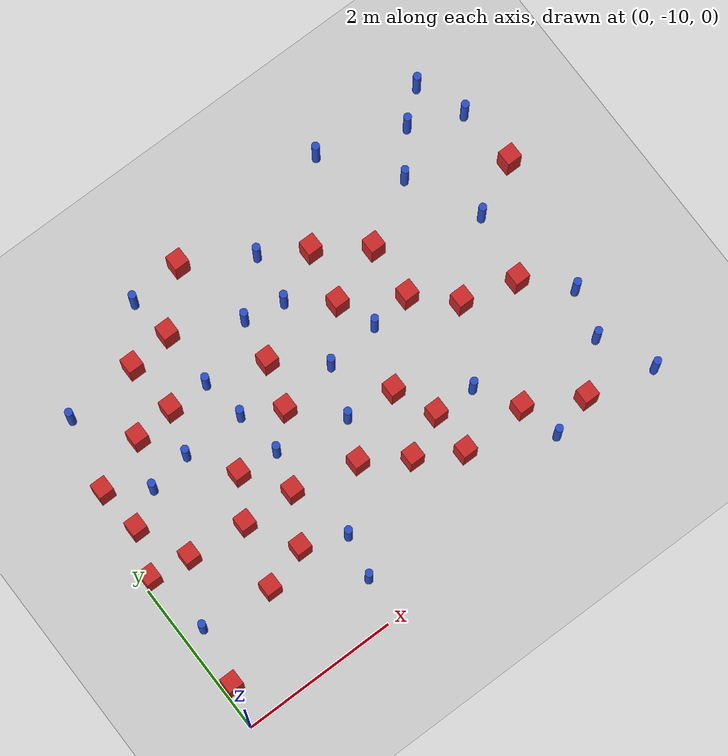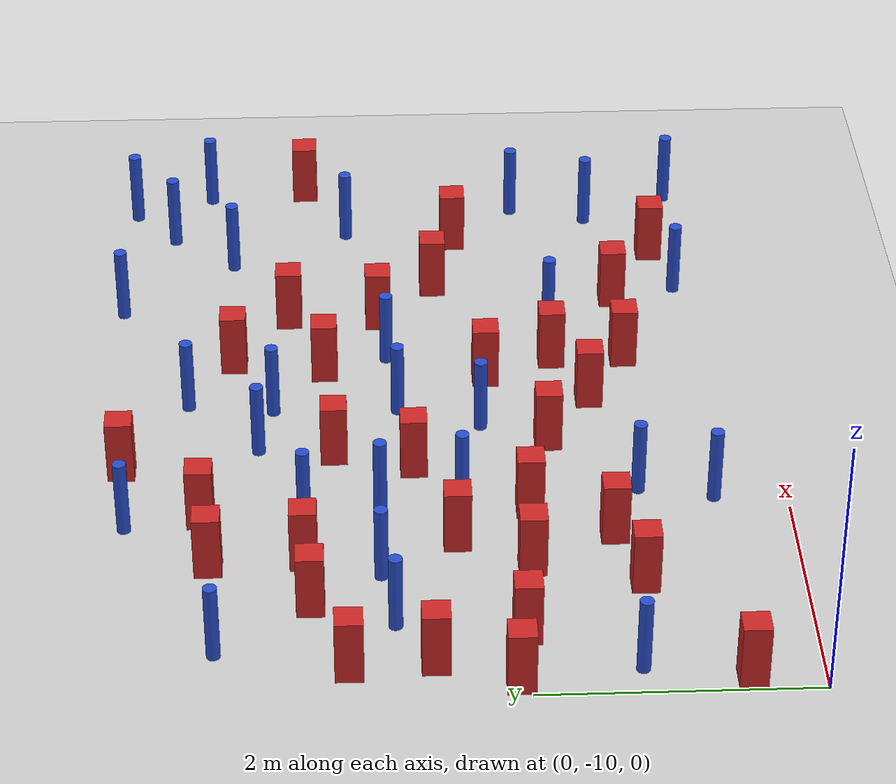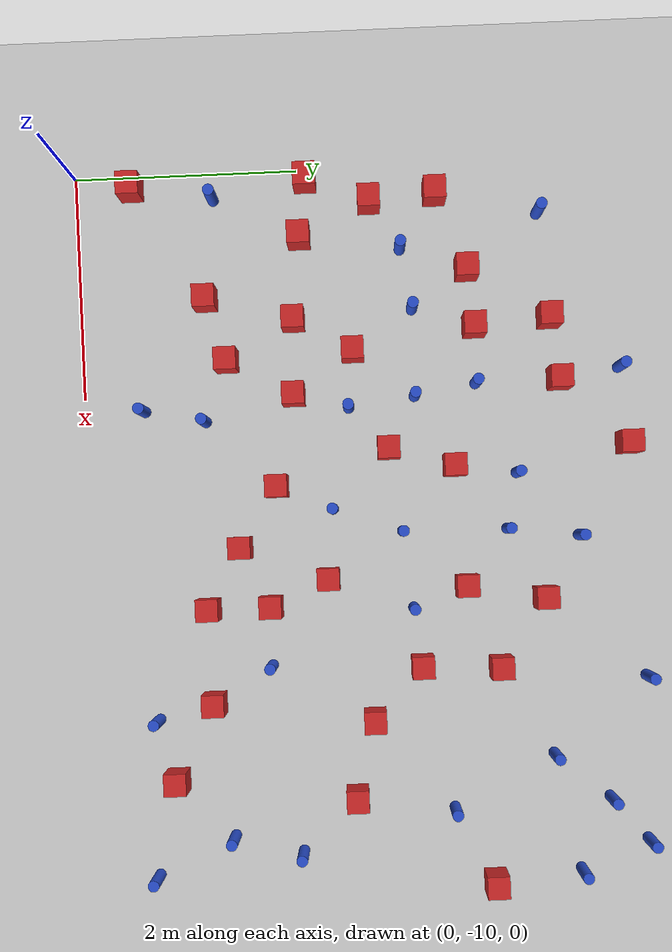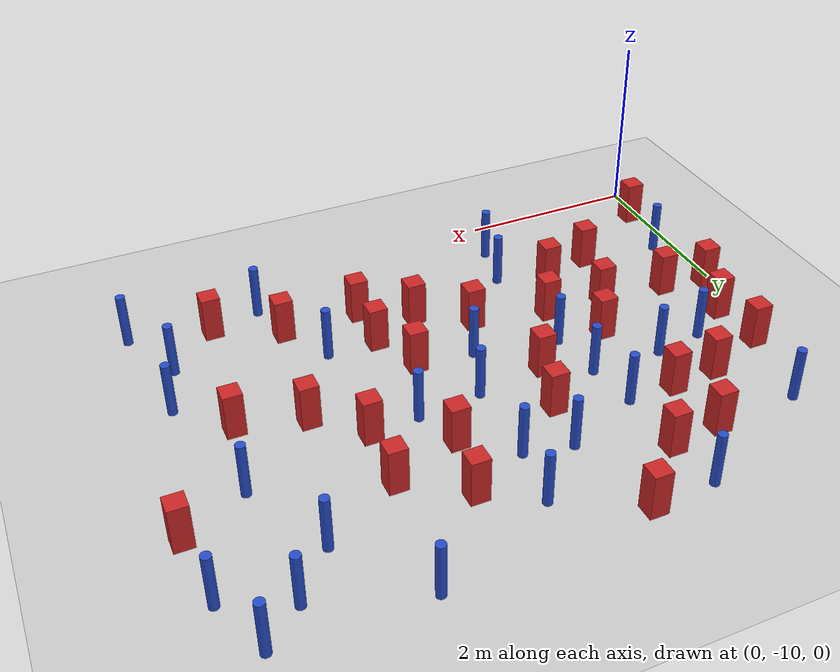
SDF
<sdf version="1.6">
 <world name="default">
  <model name="ground_plane">
   <static>1</static>
   <link name="link">
    <collision name="collision">
     <geometry><plane><normal>0 0 1</normal><size>100 100</size></plane></geometry>
     <surface><friction><ode><mu>100</mu><mu2>50</mu2></ode></friction></surface>
    </collision>
    <visual name="visual">
     <cast_shadows>0</cast_shadows>
     <geometry><plane><normal>0 0 1</normal><size>100 100</size></plane></geometry>
     <material>
      <ambient>1.0 1.0 1.0 1.0</ambient>
      <diffuse>0.8 0.8 0.8 1.0</diffuse>
      <specular>0.01 0.01 0.01 1.000000</specular>
     </material>
    </visual>
   </link>
  </model>
  <model name="square_post_obstacle5">
   <static>true</static>
   <pose>5.47020168853 -9.28129456537 1.91545236811e-07 -7.35059704564e-06 1.12565212e-07 2.39332434364e-05</pose>
   <link name="link">
    <pose>0 0 0.25 0 -0 0</pose>
    <inertial>
     <mass>100</mass>
     <inertia>
      <ixx>0.166667</ixx>
      <ixy>0</ixy>
      <ixz>0</ixz>
      <iyy>0.166667</iyy>
      <iyz>0</iyz>
      <izz>0.166667</izz>
     </inertia>
    </inertial>
    <collision name="collision"><geometry><box><size>.2 .2 .5</size></box></geometry></collision>
    <visual name="visual">
     <geometry><box><size>.2 .2 .5</size></box></geometry>
     <material>
      <script><name>Gazebo/Red</name><uri>file://media/materials/scripts/gazebo.material</uri></script>
     </material>
    </visual>
   </link>
  </model>
  <model name="square_post_obstacle7">
   <static>true</static>
   <pose>0.969384213969 -6.50192660426 1.91545236811e-07 -7.35059704564e-06 1.12565212e-07 2.39332434364e-05</pose>
   <link name="link">
    <pose>0 0 0.25 0 -0 0</pose>
    <inertial>
     <mass>100</mass>
     <inertia>
      <ixx>0.166667</ixx>
      <ixy>0</ixy>
      <ixz>0</ixz>
      <iyy>0.166667</iyy>
      <iyz>0</iyz>
      <izz>0.166667</izz>
     </inertia>
    </inertial>
    <collision name="collision"><geometry><box><size>.2 .2 .5</size></box></geometry></collision>
    <visual name="visual">
     <geometry><box><size>.2 .2 .5</size></box></geometry>
     <material>
      <script><name>Gazebo/Red</name><uri>file://media/materials/scripts/gazebo.material</uri></script>
     </material>
    </visual>
   </link>
  </model>
  <model name="pole_obstacle10">
   <static>true</static>
   <pose>2.1343631112 -9.45369826107 7.38925637345e-09 -8.47170692793e-08 1.24976764408e-08 -1.74513093041e-07</pose>
   <link name="link">
    <pose>0 0 0.3 0 -0 0</pose>
    <inertial>
     <mass>1</mass>
     <inertia><ixx>0.145833</ixx><ixy>0</ixy><ixz>0</ixz><iyy>0.145833</iyy><iyz>0</iyz><izz>0.125</izz></inertia>
    </inertial>
    <collision name="collision">
     <geometry><cylinder><radius>0.05</radius><length>.6</length></cylinder></geometry>
    </collision>
    <visual name="visual">
     <geometry><cylinder><radius>0.05</radius><length>.6</length></cylinder></geometry>
     <material>
      <script><name>Gazebo/Blue</name><uri>file://media/materials/scripts/gazebo.material</uri></script>
     </material>
    </visual>
   </link>
  </model>
  <model name="pole_obstacle28">
   <static>true</static>
   <pose>1.99844123974 -6.45437804778 7.38925637345e-09 -8.471706928e-08 1.24976765202e-08 -1.7451309301e-07</pose>
   <link name="link">
    <pose>0 0 0.3 0 -0 0</pose>
    <inertial>
     <mass>1</mass>
     <inertia><ixx>0.145833</ixx><ixy>0</ixy><ixz>0</ixz><iyy>0.145833</iyy><iyz>0</iyz><izz>0.125</izz></inertia>
    </inertial>
    <collision name="collision">
     <geometry><cylinder><radius>0.05</radius><length>.6</length></cylinder></geometry>
    </collision>
    <visual name="visual">
     <geometry><cylinder><radius>0.05</radius><length>.6</length></cylinder></geometry>
     <material>
      <script><name>Gazebo/Blue</name><uri>file://media/materials/scripts/gazebo.material</uri></script>
     </material>
    </visual>
   </link>
  </model>
  <model name="square_post_obstacle22">
   <static>true</static>
   <pose>1.42940118034 -5.77586297094 1.91545236811e-07 -7.35059704564e-06 1.12565212e-07 2.39332434364e-05</pose>
   <link name="link">
    <pose>0 0 0.25 0 -0 0</pose>
    <inertial>
     <mass>100</mass>
     <inertia>
      <ixx>0.166667</ixx>
      <ixy>0</ixy>
      <ixz>0</ixz>
      <iyy>0.166667</iyy>
      <iyz>0</iyz>
      <izz>0.166667</izz>
     </inertia>
    </inertial>
    <collision name="collision"><geometry><box><size>.2 .2 .5</size></box></geometry></collision>
    <visual name="visual">
     <geometry><box><size>.2 .2 .5</size></box></geometry>
     <material>
      <script><name>Gazebo/Red</name><uri>file://media/materials/scripts/gazebo.material</uri></script>
     </material>
    </visual>
   </link>
  </model>
  <model name="pole_obstacle39">
   <static>true</static>
   <pose>4.00359244685 -7.09326126944 7.38925637345e-09 -8.47170692796e-08 1.24976764793e-08 -1.74513093032e-07</pose>
   <link name="link">
    <pose>0 0 0.3 0 -0 0</pose>
    <inertial>
     <mass>1</mass>
     <inertia><ixx>0.145833</ixx><ixy>0</ixy><ixz>0</ixz><iyy>0.145833</iyy><iyz>0</iyz><izz>0.125</izz></inertia>
    </inertial>
    <collision name="collision">
     <geometry><cylinder><radius>0.05</radius><length>.6</length></cylinder></geometry>
    </collision>
    <visual name="visual">
     <geometry><cylinder><radius>0.05</radius><length>.6</length></cylinder></geometry>
     <material>
      <script><name>Gazebo/Blue</name><uri>file://media/materials/scripts/gazebo.material</uri></script>
     </material>
    </visual>
   </link>
  </model>
  <model name="square_post_obstacle31">
   <static>true</static>
   <pose>2.85902986433 -8.28191390681 1.91545236811e-07 -7.35059704564e-06 1.12565212e-07 2.39332434364e-05</pose>
   <link name="link">
    <pose>0 0 0.25 0 -0 0</pose>
    <inertial>
     <mass>100</mass>
     <inertia>
      <ixx>0.166667</ixx>
      <ixy>0</ixy>
      <ixz>0</ixz>
      <iyy>0.166667</iyy>
      <iyz>0</iyz>
      <izz>0.166667</izz>
     </inertia>
    </inertial>
    <collision name="collision"><geometry><box><size>.2 .2 .5</size></box></geometry></collision>
    <visual name="visual">
     <geometry><box><size>.2 .2 .5</size></box></geometry>
     <material>
      <script><name>Gazebo/Red</name><uri>file://media/materials/scripts/gazebo.material</uri></script>
     </material>
    </visual>
   </link>
  </model>
  <model name="square_post_obstacle33">
   <static>true</static>
   <pose>4.56268803029 -6.33361589708 1.91545236811e-07 -7.35059704564e-06 1.12565212e-07 2.39332434364e-05</pose>
   <link name="link">
    <pose>0 0 0.25 0 -0 0</pose>
    <inertial>
     <mass>100</mass>
     <inertia>
      <ixx>0.166667</ixx>
      <ixy>0</ixy>
      <ixz>0</ixz>
      <iyy>0.166667</iyy>
      <iyz>0</iyz>
      <izz>0.166667</izz>
     </inertia>
    </inertial>
    <collision name="collision"><geometry><box><size>.2 .2 .5</size></box></geometry></collision>
    <visual name="visual">
     <geometry><box><size>.2 .2 .5</size></box></geometry>
     <material>
      <script><name>Gazebo/Red</name><uri>file://media/materials/scripts/gazebo.material</uri></script>
     </material>
    </visual>
   </link>
  </model>
  <model name="pole_obstacle45">
   <static>true</static>
   <pose>6.42730115407 -5.67031655102 7.38925637345e-09 -8.47170692796e-08 1.24976764786e-08 -1.74513093032e-07</pose>
   <link name="link">
    <pose>0 0 0.3 0 -0 0</pose>
    <inertial>
     <mass>1</mass>
     <inertia><ixx>0.145833</ixx><ixy>0</ixy><ixz>0</ixz><iyy>0.145833</iyy><iyz>0</iyz><izz>0.125</izz></inertia>
    </inertial>
    <collision name="collision">
     <geometry><cylinder><radius>0.05</radius><length>.6</length></cylinder></geometry>
    </collision>
    <visual name="visual">
     <geometry><cylinder><radius>0.05</radius><length>.6</length></cylinder></geometry>
     <material>
      <script><name>Gazebo/Blue</name><uri>file://media/materials/scripts/gazebo.material</uri></script>
     </material>
    </visual>
   </link>
  </model>
  <model name="pole_obstacle52">
   <static>true</static>
   <pose>2.24843024175 -8.90656425745 7.38925637345e-09 -8.47170692793e-08 1.24976764408e-08 -1.74513093041e-07</pose>
   <link name="link">
    <pose>0 0 0.3 0 -0 0</pose>
    <inertial>
     <mass>1</mass>
     <inertia><ixx>0.145833</ixx><ixy>0</ixy><ixz>0</ixz><iyy>0.145833</iyy><iyz>0</iyz><izz>0.125</izz></inertia>
    </inertial>
    <collision name="collision">
     <geometry><cylinder><radius>0.05</radius><length>.6</length></cylinder></geometry>
    </collision>
    <visual name="visual">
     <geometry><cylinder><radius>0.05</radius><length>.6</length></cylinder></geometry>
     <material>
      <script><name>Gazebo/Blue</name><uri>file://media/materials/scripts/gazebo.material</uri></script>
     </material>
    </visual>
   </link>
  </model>
  <model name="pole_obstacle62">
   <static>true</static>
   <pose>6.00380496168 -8.79087107958 7.38925637345e-09 -8.471706928e-08 1.24976765081e-08 -1.74513093015e-07</pose>
   <link name="link">
    <pose>0 0 0.3 0 -0 0</pose>
    <inertial>
     <mass>1</mass>
     <inertia><ixx>0.145833</ixx><ixy>0</ixy><ixz>0</ixz><iyy>0.145833</iyy><iyz>0</iyz><izz>0.125</izz></inertia>
    </inertial>
    <collision name="collision">
     <geometry><cylinder><radius>0.05</radius><length>.6</length></cylinder></geometry>
    </collision>
    <visual name="visual">
     <geometry><cylinder><radius>0.05</radius><length>.6</length></cylinder></geometry>
     <material>
      <script><name>Gazebo/Blue</name><uri>file://media/materials/scripts/gazebo.material</uri></script>
     </material>
    </visual>
   </link>
  </model>
  <model name="square_post_obstacle49">
   <static>true</static>
   <pose>0.273968868932 -6.76495690813 1.91545236811e-07 -7.35059704564e-06 1.12565212e-07 2.39332434364e-05</pose>
   <link name="link">
    <pose>0 0 0.25 0 -0 0</pose>
    <inertial>
     <mass>100</mass>
     <inertia>
      <ixx>0.166667</ixx>
      <ixy>0</ixy>
      <ixz>0</ixz>
      <iyy>0.166667</iyy>
      <iyz>0</iyz>
      <izz>0.166667</izz>
     </inertia>
    </inertial>
    <collision name="collision"><geometry><box><size>.2 .2 .5</size></box></geometry></collision>
    <visual name="visual">
     <geometry><box><size>.2 .2 .5</size></box></geometry>
     <material>
      <script><name>Gazebo/Red</name><uri>file://media/materials/scripts/gazebo.material</uri></script>
     </material>
    </visual>
   </link>
  </model>
  <model name="pole_obstacle63">
   <static>true</static>
   <pose>2.09076308118 -7.01022061048 7.38925637345e-09 -8.47170692798e-08 1.24976765033e-08 -1.74513093019e-07</pose>
   <link name="link">
    <pose>0 0 0.3 0 -0 0</pose>
    <inertial>
     <mass>1</mass>
     <inertia><ixx>0.145833</ixx><ixy>0</ixy><ixz>0</ixz><iyy>0.145833</iyy><iyz>0</iyz><izz>0.125</izz></inertia>
    </inertial>
    <collision name="collision">
     <geometry><cylinder><radius>0.05</radius><length>.6</length></cylinder></geometry>
    </collision>
    <visual name="visual">
     <geometry><cylinder><radius>0.05</radius><length>.6</length></cylinder></geometry>
     <material>
      <script><name>Gazebo/Blue</name><uri>file://media/materials/scripts/gazebo.material</uri></script>
     </material>
    </visual>
   </link>
  </model>
  <model name="square_post_obstacle50">
   <static>true</static>
   <pose>0.323421957365 -7.35520028261 1.91545236811e-07 -7.35059704564e-06 1.12565212e-07 2.39332434364e-05</pose>
   <link name="link">
    <pose>0 0 0.25 0 -0 0</pose>
    <inertial>
     <mass>100</mass>
     <inertia>
      <ixx>0.166667</ixx>
      <ixy>0</ixy>
      <ixz>0</ixz>
      <iyy>0.166667</iyy>
      <iyz>0</iyz>
      <izz>0.166667</izz>
     </inertia>
    </inertial>
    <collision name="collision"><geometry><box><size>.2 .2 .5</size></box></geometry></collision>
    <visual name="visual">
     <geometry><box><size>.2 .2 .5</size></box></geometry>
     <material>
      <script><name>Gazebo/Red</name><uri>file://media/materials/scripts/gazebo.material</uri></script>
     </material>
    </visual>
   </link>
  </model>
  <model name="square_post_obstacle55">
   <static>true</static>
   <pose>3.71096104566 -7.85134940278 1.91545236811e-07 -7.35059704564e-06 1.12565212e-07 2.39332434364e-05</pose>
   <link name="link">
    <pose>0 0 0.25 0 -0 0</pose>
    <inertial>
     <mass>100</mass>
     <inertia>
      <ixx>0.166667</ixx>
      <ixy>0</ixy>
      <ixz>0</ixz>
      <iyy>0.166667</iyy>
      <iyz>0</iyz>
      <izz>0.166667</izz>
     </inertia>
    </inertial>
    <collision name="collision"><geometry><box><size>.2 .2 .5</size></box></geometry></collision>
    <visual name="visual">
     <geometry><box><size>.2 .2 .5</size></box></geometry>
     <material>
      <script><name>Gazebo/Red</name><uri>file://media/materials/scripts/gazebo.material</uri></script>
     </material>
    </visual>
   </link>
  </model>
  <model name="square_post_obstacle58">
   <static>true</static>
   <pose>0.107334259408 -7.92188177164 1.91545236811e-07 -7.35059704564e-06 1.12565212e-07 2.39332434364e-05</pose>
   <link name="link">
    <pose>0 0 0.25 0 -0 0</pose>
    <inertial>
     <mass>100</mass>
     <inertia>
      <ixx>0.166667</ixx>
      <ixy>0</ixy>
      <ixz>0</ixz>
      <iyy>0.166667</iyy>
      <iyz>0</iyz>
      <izz>0.166667</izz>
     </inertia>
    </inertial>
    <collision name="collision"><geometry><box><size>.2 .2 .5</size></box></geometry></collision>
    <visual name="visual">
     <geometry><box><size>.2 .2 .5</size></box></geometry>
     <material>
      <script><name>Gazebo/Red</name><uri>file://media/materials/scripts/gazebo.material</uri></script>
     </material>
    </visual>
   </link>
  </model>
  <model name="pole_obstacle69">
   <static>true</static>
   <pose>4.70257432908 -5.01154501933 7.38925637345e-09 -8.47170692796e-08 1.24976764786e-08 -1.74513093032e-07</pose>
   <link name="link">
    <pose>0 0 0.3 0 -0 0</pose>
    <inertial>
     <mass>1</mass>
     <inertia><ixx>0.145833</ixx><ixy>0</ixy><ixz>0</ixz><iyy>0.145833</iyy><iyz>0</iyz><izz>0.125</izz></inertia>
    </inertial>
    <collision name="collision">
     <geometry><cylinder><radius>0.05</radius><length>.6</length></cylinder></geometry>
    </collision>
    <visual name="visual">
     <geometry><cylinder><radius>0.05</radius><length>.6</length></cylinder></geometry>
     <material>
      <script><name>Gazebo/Blue</name><uri>file://media/materials/scripts/gazebo.material</uri></script>
     </material>
    </visual>
   </link>
  </model>
  <model name="square_post_obstacle71">
   <static>true</static>
   <pose>4.99521495875 -7.48334320355 1.91545236811e-07 -7.35059704564e-06 1.12565212e-07 2.39332434364e-05</pose>
   <link name="link">
    <pose>0 0 0.25 0 -0 0</pose>
    <inertial>
     <mass>100</mass>
     <inertia>
      <ixx>0.166667</ixx>
      <ixy>0</ixy>
      <ixz>0</ixz>
      <iyy>0.166667</iyy>
      <iyz>0</iyz>
      <izz>0.166667</izz>
     </inertia>
    </inertial>
    <collision name="collision"><geometry><box><size>.2 .2 .5</size></box></geometry></collision>
    <visual name="visual">
     <geometry><box><size>.2 .2 .5</size></box></geometry>
     <material>
      <script><name>Gazebo/Red</name><uri>file://media/materials/scripts/gazebo.material</uri></script>
     </material>
    </visual>
   </link>
  </model>
  <model name="pole_obstacle86">
   <static>true</static>
   <pose>0.482200809113 -5.83749112108 7.38925637345e-09 -8.471706928e-08 1.24976765095e-08 -1.74513093014e-07</pose>
   <link name="link">
    <pose>0 0 0.3 0 -0 0</pose>
    <inertial>
     <mass>1</mass>
     <inertia><ixx>0.145833</ixx><ixy>0</ixy><ixz>0</ixz><iyy>0.145833</iyy><iyz>0</iyz><izz>0.125</izz></inertia>
    </inertial>
    <collision name="collision">
     <geometry><cylinder><radius>0.05</radius><length>.6</length></cylinder></geometry>
    </collision>
    <visual name="visual">
     <geometry><cylinder><radius>0.05</radius><length>.6</length></cylinder></geometry>
     <material>
      <script><name>Gazebo/Blue</name><uri>file://media/materials/scripts/gazebo.material</uri></script>
     </material>
    </visual>
   </link>
  </model>
  <model name="square_post_obstacle75">
   <static>true</static>
   <pose>3.93964495955 -8.37580098149 1.91545236811e-07 -7.35059704564e-06 1.12565212e-07 2.39332434364e-05</pose>
   <link name="link">
    <pose>0 0 0.25 0 -0 0</pose>
    <inertial>
     <mass>100</mass>
     <inertia>
      <ixx>0.166667</ixx>
      <ixy>0</ixy>
      <ixz>0</ixz>
      <iyy>0.166667</iyy>
      <iyz>0</iyz>
      <izz>0.166667</izz>
     </inertia>
    </inertial>
    <collision name="collision"><geometry><box><size>.2 .2 .5</size></box></geometry></collision>
    <visual name="visual">
     <geometry><box><size>.2 .2 .5</size></box></geometry>
     <material>
      <script><name>Gazebo/Red</name><uri>file://media/materials/scripts/gazebo.material</uri></script>
     </material>
    </visual>
   </link>
  </model>
  <model name="square_post_obstacle80">
   <static>true</static>
   <pose>1.98970775335 -5.70588017651 1.91545236811e-07 -7.35059704564e-06 1.12565212e-07 2.39332434364e-05</pose>
   <link name="link">
    <pose>0 0 0.25 0 -0 0</pose>
    <inertial>
     <mass>100</mass>
     <inertia>
      <ixx>0.166667</ixx>
      <ixy>0</ixy>
      <ixz>0</ixz>
      <iyy>0.166667</iyy>
      <iyz>0</iyz>
      <izz>0.166667</izz>
     </inertia>
    </inertial>
    <collision name="collision"><geometry><box><size>.2 .2 .5</size></box></geometry></collision>
    <visual name="visual">
     <geometry><box><size>.2 .2 .5</size></box></geometry>
     <material>
      <script><name>Gazebo/Red</name><uri>file://media/materials/scripts/gazebo.material</uri></script>
     </material>
    </visual>
   </link>
  </model>
  <model name="square_post_obstacle83">
   <static>true</static>
   <pose>5.68722203319 -7.66866848318 1.91545236811e-07 -7.35059704564e-06 1.12565212e-07 2.39332434364e-05</pose>
   <link name="link">
    <pose>0 0 0.25 0 -0 0</pose>
    <inertial>
     <mass>100</mass>
     <inertia>
      <ixx>0.166667</ixx>
      <ixy>0</ixy>
      <ixz>0</ixz>
      <iyy>0.166667</iyy>
      <iyz>0</iyz>
      <izz>0.166667</izz>
     </inertia>
    </inertial>
    <collision name="collision"><geometry><box><size>.2 .2 .5</size></box></geometry></collision>
    <visual name="visual">
     <geometry><box><size>.2 .2 .5</size></box></geometry>
     <material>
      <script><name>Gazebo/Red</name><uri>file://media/materials/scripts/gazebo.material</uri></script>
     </material>
    </visual>
   </link>
  </model>
  <model name="square_post_obstacle86">
   <static>true</static>
   <pose>2.5569345561 -7.26580302891 1.91545236811e-07 -7.35059704564e-06 1.12565212e-07 2.39332434364e-05</pose>
   <link name="link">
    <pose>0 0 0.25 0 -0 0</pose>
    <inertial>
     <mass>100</mass>
     <inertia>
      <ixx>0.166667</ixx>
      <ixy>0</ixy>
      <ixz>0</ixz>
      <iyy>0.166667</iyy>
      <iyz>0</iyz>
      <izz>0.166667</izz>
     </inertia>
    </inertial>
    <collision name="collision"><geometry><box><size>.2 .2 .5</size></box></geometry></collision>
    <visual name="visual">
     <geometry><box><size>.2 .2 .5</size></box></geometry>
     <material>
      <script><name>Gazebo/Red</name><uri>file://media/materials/scripts/gazebo.material</uri></script>
     </material>
    </visual>
   </link>
  </model>
  <model name="pole_obstacle97">
   <static>true</static>
   <pose>1.90308461652 -5.15342676283 7.38925637345e-09 -8.47170692799e-08 1.24976765033e-08 -1.74513093018e-07</pose>
   <link name="link">
    <pose>0 0 0.3 0 -0 0</pose>
    <inertial>
     <mass>1</mass>
     <inertia><ixx>0.145833</ixx><ixy>0</ixy><ixz>0</ixz><iyy>0.145833</iyy><iyz>0</iyz><izz>0.125</izz></inertia>
    </inertial>
    <collision name="collision">
     <geometry><cylinder><radius>0.05</radius><length>.6</length></cylinder></geometry>
    </collision>
    <visual name="visual">
     <geometry><cylinder><radius>0.05</radius><length>.6</length></cylinder></geometry>
     <material>
      <script><name>Gazebo/Blue</name><uri>file://media/materials/scripts/gazebo.material</uri></script>
     </material>
    </visual>
   </link>
  </model>
  <model name="pole_obstacle100">
   <static>true</static>
   <pose>6.16857240504 -8.1782169016 7.38925637345e-09 -8.471706928e-08 1.24976765081e-08 -1.74513093015e-07</pose>
   <link name="link">
    <pose>0 0 0.3 0 -0 0</pose>
    <inertial>
     <mass>1</mass>
     <inertia><ixx>0.145833</ixx><ixy>0</ixy><ixz>0</ixz><iyy>0.145833</iyy><iyz>0</iyz><izz>0.125</izz></inertia>
    </inertial>
    <collision name="collision">
     <geometry><cylinder><radius>0.05</radius><length>.6</length></cylinder></geometry>
    </collision>
    <visual name="visual">
     <geometry><cylinder><radius>0.05</radius><length>.6</length></cylinder></geometry>
     <material>
      <script><name>Gazebo/Blue</name><uri>file://media/materials/scripts/gazebo.material</uri></script>
     </material>
    </visual>
   </link>
  </model>
  <model name="square_post_obstacle92">
   <static>true</static>
   <pose>1.14984041746 -8.85655158752 1.91545236811e-07 -7.35059704564e-06 1.12565212e-07 2.39332434364e-05</pose>
   <link name="link">
    <pose>0 0 0.25 0 -0 0</pose>
    <inertial>
     <mass>100</mass>
     <inertia>
      <ixx>0.166667</ixx>
      <ixy>0</ixy>
      <ixz>0</ixz>
      <iyy>0.166667</iyy>
      <iyz>0</iyz>
      <izz>0.166667</izz>
     </inertia>
    </inertial>
    <collision name="collision"><geometry><box><size>.2 .2 .5</size></box></geometry></collision>
    <visual name="visual">
     <geometry><box><size>.2 .2 .5</size></box></geometry>
     <material>
      <script><name>Gazebo/Red</name><uri>file://media/materials/scripts/gazebo.material</uri></script>
     </material>
    </visual>
   </link>
  </model>
  <model name="pole_obstacle102">
   <static>true</static>
   <pose>5.82768981374 -6.79400900313 7.38925637345e-09 -8.47170692796e-08 1.24976764786e-08 -1.74513093032e-07</pose>
   <link name="link">
    <pose>0 0 0.3 0 -0 0</pose>
    <inertial>
     <mass>1</mass>
     <inertia><ixx>0.145833</ixx><ixy>0</ixy><ixz>0</ixz><iyy>0.145833</iyy><iyz>0</iyz><izz>0.125</izz></inertia>
    </inertial>
    <collision name="collision">
     <geometry><cylinder><radius>0.05</radius><length>.6</length></cylinder></geometry>
    </collision>
    <visual name="visual">
     <geometry><cylinder><radius>0.05</radius><length>.6</length></cylinder></geometry>
     <material>
      <script><name>Gazebo/Blue</name><uri>file://media/materials/scripts/gazebo.material</uri></script>
     </material>
    </visual>
   </link>
  </model>
  <model name="square_post_obstacle98">
   <static>true</static>
   <pose>2.04072906367 -8.09755141206 1.91545236811e-07 -7.35059704564e-06 1.12565212e-07 2.39332434364e-05</pose>
   <link name="link">
    <pose>0 0 0.25 0 -0 0</pose>
    <inertial>
     <mass>100</mass>
     <inertia>
      <ixx>0.166667</ixx>
      <ixy>0</ixy>
      <ixz>0</ixz>
      <iyy>0.166667</iyy>
      <iyz>0</iyz>
      <izz>0.166667</izz>
     </inertia>
    </inertial>
    <collision name="collision"><geometry><box><size>.2 .2 .5</size></box></geometry></collision>
    <visual name="visual">
     <geometry><box><size>.2 .2 .5</size></box></geometry>
     <material>
      <script><name>Gazebo/Red</name><uri>file://media/materials/scripts/gazebo.material</uri></script>
     </material>
    </visual>
   </link>
  </model>
  <model name="pole_obstacle118">
   <static>true</static>
   <pose>3.40644092852 -5.57253508935 7.38925637345e-09 -8.47170692798e-08 1.24976765033e-08 -1.74513093019e-07</pose>
   <link name="link">
    <pose>0 0 0.3 0 -0 0</pose>
    <inertial>
     <mass>1</mass>
     <inertia><ixx>0.145833</ixx><ixy>0</ixy><ixz>0</ixz><iyy>0.145833</iyy><iyz>0</iyz><izz>0.125</izz></inertia>
    </inertial>
    <collision name="collision">
     <geometry><cylinder><radius>0.05</radius><length>.6</length></cylinder></geometry>
    </collision>
    <visual name="visual">
     <geometry><cylinder><radius>0.05</radius><length>.6</length></cylinder></geometry>
     <material>
      <script><name>Gazebo/Blue</name><uri>file://media/materials/scripts/gazebo.material</uri></script>
     </material>
    </visual>
   </link>
  </model>
  <model name="square_post_obstacle119">
   <static>true</static>
   <pose>4.52713903767 -7.03802349716 1.91545236811e-07 -7.35059704564e-06 1.12565212e-07 2.39332434364e-05</pose>
   <link name="link">
    <pose>0 0 0.25 0 -0 0</pose>
    <inertial>
     <mass>100</mass>
     <inertia>
      <ixx>0.166667</ixx>
      <ixy>0</ixy>
      <ixz>0</ixz>
      <iyy>0.166667</iyy>
      <iyz>0</iyz>
      <izz>0.166667</izz>
     </inertia>
    </inertial>
    <collision name="collision"><geometry><box><size>.2 .2 .5</size></box></geometry></collision>
    <visual name="visual">
     <geometry><box><size>.2 .2 .5</size></box></geometry>
     <material>
      <script><name>Gazebo/Red</name><uri>file://media/materials/scripts/gazebo.material</uri></script>
     </material>
    </visual>
   </link>
  </model>
  <model name="pole_obstacle127">
   <static>true</static>
   <pose>5.78582600154 -5.38404836335 7.38925637345e-09 -8.47170692796e-08 1.24976764786e-08 -1.74513093032e-07</pose>
   <link name="link">
    <pose>0 0 0.3 0 -0 0</pose>
    <inertial>
     <mass>1</mass>
     <inertia><ixx>0.145833</ixx><ixy>0</ixy><ixz>0</ixz><iyy>0.145833</iyy><iyz>0</iyz><izz>0.125</izz></inertia>
    </inertial>
    <collision name="collision">
     <geometry><cylinder><radius>0.05</radius><length>.6</length></cylinder></geometry>
    </collision>
    <visual name="visual">
     <geometry><cylinder><radius>0.05</radius><length>.6</length></cylinder></geometry>
     <material>
      <script><name>Gazebo/Blue</name><uri>file://media/materials/scripts/gazebo.material</uri></script>
     </material>
    </visual>
   </link>
  </model>
  <model name="square_post_obstacle123">
   <static>true</static>
   <pose>3.94166321461 -8.93773927921 1.91545236811e-07 -7.35059704564e-06 1.12565212e-07 2.39332434364e-05</pose>
   <link name="link">
    <pose>0 0 0.25 0 -0 0</pose>
    <inertial>
     <mass>100</mass>
     <inertia>
      <ixx>0.166667</ixx>
      <ixy>0</ixy>
      <ixz>0</ixz>
      <iyy>0.166667</iyy>
      <iyz>0</iyz>
      <izz>0.166667</izz>
     </inertia>
    </inertial>
    <collision name="collision"><geometry><box><size>.2 .2 .5</size></box></geometry></collision>
    <visual name="visual">
     <geometry><box><size>.2 .2 .5</size></box></geometry>
     <material>
      <script><name>Gazebo/Red</name><uri>file://media/materials/scripts/gazebo.material</uri></script>
     </material>
    </visual>
   </link>
  </model>
  <model name="pole_obstacle130">
   <static>true</static>
   <pose>2.82012892378 -6.11336026137 7.38925637345e-09 -8.47170692798e-08 1.24976765033e-08 -1.74513093019e-07</pose>
   <link name="link">
    <pose>0 0 0.3 0 -0 0</pose>
    <inertial>
     <mass>1</mass>
     <inertia><ixx>0.145833</ixx><ixy>0</ixy><ixz>0</ixz><iyy>0.145833</iyy><iyz>0</iyz><izz>0.125</izz></inertia>
    </inertial>
    <collision name="collision">
     <geometry><cylinder><radius>0.05</radius><length>.6</length></cylinder></geometry>
    </collision>
    <visual name="visual">
     <geometry><cylinder><radius>0.05</radius><length>.6</length></cylinder></geometry>
     <material>
      <script><name>Gazebo/Blue</name><uri>file://media/materials/scripts/gazebo.material</uri></script>
     </material>
    </visual>
   </link>
  </model>
  <model name="square_post_obstacle126">
   <static>true</static>
   <pose>0.125007978404 -9.48924546544 1.91545236811e-07 -7.35059704564e-06 1.12565212e-07 2.39332434364e-05</pose>
   <link name="link">
    <pose>0 0 0.25 0 -0 0</pose>
    <inertial>
     <mass>100</mass>
     <inertia>
      <ixx>0.166667</ixx>
      <ixy>0</ixy>
      <ixz>0</ixz>
      <iyy>0.166667</iyy>
      <iyz>0</iyz>
      <izz>0.166667</izz>
     </inertia>
    </inertial>
    <collision name="collision"><geometry><box><size>.2 .2 .5</size></box></geometry></collision>
    <visual name="visual">
     <geometry><box><size>.2 .2 .5</size></box></geometry>
     <material>
      <script><name>Gazebo/Red</name><uri>file://media/materials/scripts/gazebo.material</uri></script>
     </material>
    </visual>
   </link>
  </model>
  <model name="pole_obstacle140">
   <static>true</static>
   <pose>0.242353646663 -8.76124676907 7.38925637345e-09 -8.47170692797e-08 1.24976764785e-08 -1.74513093032e-07</pose>
   <link name="link">
    <pose>0 0 0.3 0 -0 0</pose>
    <inertial>
     <mass>1</mass>
     <inertia><ixx>0.145833</ixx><ixy>0</ixy><ixz>0</ixz><iyy>0.145833</iyy><iyz>0</iyz><izz>0.125</izz></inertia>
    </inertial>
    <collision name="collision">
     <geometry><cylinder><radius>0.05</radius><length>.6</length></cylinder></geometry>
    </collision>
    <visual name="visual">
     <geometry><cylinder><radius>0.05</radius><length>.6</length></cylinder></geometry>
     <material>
      <script><name>Gazebo/Blue</name><uri>file://media/materials/scripts/gazebo.material</uri></script>
     </material>
    </visual>
   </link>
  </model>
  <model name="pole_obstacle141">
   <static>true</static>
   <pose>5.37393038951 -5.87638050627 7.38925637345e-09 -8.47170692796e-08 1.24976764786e-08 -1.74513093032e-07</pose>
   <link name="link">
    <pose>0 0 0.3 0 -0 0</pose>
    <inertial>
     <mass>1</mass>
     <inertia><ixx>0.145833</ixx><ixy>0</ixy><ixz>0</ixz><iyy>0.145833</iyy><iyz>0</iyz><izz>0.125</izz></inertia>
    </inertial>
    <collision name="collision">
     <geometry><cylinder><radius>0.05</radius><length>.6</length></cylinder></geometry>
    </collision>
    <visual name="visual">
     <geometry><cylinder><radius>0.05</radius><length>.6</length></cylinder></geometry>
     <material>
      <script><name>Gazebo/Blue</name><uri>file://media/materials/scripts/gazebo.material</uri></script>
     </material>
    </visual>
   </link>
  </model>
  <model name="pole_obstacle145">
   <static>true</static>
   <pose>3.30708489699 -7.16539405852 7.38925637345e-09 -8.47170692798e-08 1.24976765033e-08 -1.74513093019e-07</pose>
   <link name="link">
    <pose>0 0 0.3 0 -0 0</pose>
    <inertial>
     <mass>1</mass>
     <inertia><ixx>0.145833</ixx><ixy>0</ixy><ixz>0</ixz><iyy>0.145833</iyy><iyz>0</iyz><izz>0.125</izz></inertia>
    </inertial>
    <collision name="collision">
     <geometry><cylinder><radius>0.05</radius><length>.6</length></cylinder></geometry>
    </collision>
    <visual name="visual">
     <geometry><cylinder><radius>0.05</radius><length>.6</length></cylinder></geometry>
     <material>
      <script><name>Gazebo/Blue</name><uri>file://media/materials/scripts/gazebo.material</uri></script>
     </material>
    </visual>
   </link>
  </model>
  <model name="square_post_obstacle140">
   <static>true</static>
   <pose>1.48662328223 -6.45413619623 1.91545236811e-07 -7.35059704564e-06 1.12565212e-07 2.39332434364e-05</pose>
   <link name="link">
    <pose>0 0 0.25 0 -0 0</pose>
    <inertial>
     <mass>100</mass>
     <inertia>
      <ixx>0.166667</ixx>
      <ixy>0</ixy>
      <ixz>0</ixz>
      <iyy>0.166667</iyy>
      <iyz>0</iyz>
      <izz>0.166667</izz>
     </inertia>
    </inertial>
    <collision name="collision"><geometry><box><size>.2 .2 .5</size></box></geometry></collision>
    <visual name="visual">
     <geometry><box><size>.2 .2 .5</size></box></geometry>
     <material>
      <script><name>Gazebo/Red</name><uri>file://media/materials/scripts/gazebo.material</uri></script>
     </material>
    </visual>
   </link>
  </model>
  <model name="pole_obstacle151">
   <static>true</static>
   <pose>6.33274950542 -9.49070463449 7.38925637345e-09 -8.471706928e-08 1.24976765081e-08 -1.74513093015e-07</pose>
   <link name="link">
    <pose>0 0 0.3 0 -0 0</pose>
    <inertial>
     <mass>1</mass>
     <inertia><ixx>0.145833</ixx><ixy>0</ixy><ixz>0</ixz><iyy>0.145833</iyy><iyz>0</iyz><izz>0.125</izz></inertia>
    </inertial>
    <collision name="collision">
     <geometry><cylinder><radius>0.05</radius><length>.6</length></cylinder></geometry>
    </collision>
    <visual name="visual">
     <geometry><cylinder><radius>0.05</radius><length>.6</length></cylinder></geometry>
     <material>
      <script><name>Gazebo/Blue</name><uri>file://media/materials/scripts/gazebo.material</uri></script>
     </material>
    </visual>
   </link>
  </model>
  <model name="pole_obstacle152">
   <static>true</static>
   <pose>3.3222979483 -6.21852213091 7.38925637345e-09 -8.47170692798e-08 1.24976765033e-08 -1.74513093019e-07</pose>
   <link name="link">
    <pose>0 0 0.3 0 -0 0</pose>
    <inertial>
     <mass>1</mass>
     <inertia><ixx>0.145833</ixx><ixy>0</ixy><ixz>0</ixz><iyy>0.145833</iyy><iyz>0</iyz><izz>0.125</izz></inertia>
    </inertial>
    <collision name="collision">
     <geometry><cylinder><radius>0.05</radius><length>.6</length></cylinder></geometry>
    </collision>
    <visual name="visual">
     <geometry><cylinder><radius>0.05</radius><length>.6</length></cylinder></geometry>
     <material>
      <script><name>Gazebo/Blue</name><uri>file://media/materials/scripts/gazebo.material</uri></script>
     </material>
    </visual>
   </link>
  </model>
  <model name="square_post_obstacle146">
   <static>true</static>
   <pose>2.59145087519 -5.10392792335 1.91545236811e-07 -7.35059704564e-06 1.12565212e-07 2.39332434364e-05</pose>
   <link name="link">
    <pose>0 0 0.25 0 -0 0</pose>
    <inertial>
     <mass>100</mass>
     <inertia>
      <ixx>0.166667</ixx>
      <ixy>0</ixy>
      <ixz>0</ixz>
      <iyy>0.166667</iyy>
      <iyz>0</iyz>
      <izz>0.166667</izz>
     </inertia>
    </inertial>
    <collision name="collision"><geometry><box><size>.2 .2 .5</size></box></geometry></collision>
    <visual name="visual">
     <geometry><box><size>.2 .2 .5</size></box></geometry>
     <material>
      <script><name>Gazebo/Red</name><uri>file://media/materials/scripts/gazebo.material</uri></script>
     </material>
    </visual>
   </link>
  </model>
  <model name="square_post_obstacle148">
   <static>true</static>
   <pose>2.73459389724 -6.67757374376 1.91545236811e-07 -7.35059704564e-06 1.12565212e-07 2.39332434364e-05</pose>
   <link name="link">
    <pose>0 0 0.25 0 -0 0</pose>
    <inertial>
     <mass>100</mass>
     <inertia>
      <ixx>0.166667</ixx>
      <ixy>0</ixy>
      <ixz>0</ixz>
      <iyy>0.166667</iyy>
      <iyz>0</iyz>
      <izz>0.166667</izz>
     </inertia>
    </inertial>
    <collision name="collision"><geometry><box><size>.2 .2 .5</size></box></geometry></collision>
    <visual name="visual">
     <geometry><box><size>.2 .2 .5</size></box></geometry>
     <material>
      <script><name>Gazebo/Red</name><uri>file://media/materials/scripts/gazebo.material</uri></script>
     </material>
    </visual>
   </link>
  </model>
  <model name="pole_obstacle156">
   <static>true</static>
   <pose>1.30325834038 -7.00333021548 7.38925637345e-09 -8.47170692799e-08 1.24976765033e-08 -1.74513093018e-07</pose>
   <link name="link">
    <pose>0 0 0.3 0 -0 0</pose>
    <inertial>
     <mass>1</mass>
     <inertia><ixx>0.145833</ixx><ixy>0</ixy><ixz>0</ixz><iyy>0.145833</iyy><iyz>0</iyz><izz>0.125</izz></inertia>
    </inertial>
    <collision name="collision">
     <geometry><cylinder><radius>0.05</radius><length>.6</length></cylinder></geometry>
    </collision>
    <visual name="visual">
     <geometry><cylinder><radius>0.05</radius><length>.6</length></cylinder></geometry>
     <material>
      <script><name>Gazebo/Blue</name><uri>file://media/materials/scripts/gazebo.material</uri></script>
     </material>
    </visual>
   </link>
  </model>
  <model name="square_post_obstacle153">
   <static>true</static>
   <pose>6.4971379441 -6.45543249096 1.91545236811e-07 -7.35059704564e-06 1.12565212e-07 2.39332434364e-05</pose>
   <link name="link">
    <pose>0 0 0.25 0 -0 0</pose>
    <inertial>
     <mass>100</mass>
     <inertia>
      <ixx>0.166667</ixx>
      <ixy>0</ixy>
      <ixz>0</ixz>
      <iyy>0.166667</iyy>
      <iyz>0</iyz>
      <izz>0.166667</izz>
     </inertia>
    </inertial>
    <collision name="collision"><geometry><box><size>.2 .2 .5</size></box></geometry></collision>
    <visual name="visual">
     <geometry><box><size>.2 .2 .5</size></box></geometry>
     <material>
      <script><name>Gazebo/Red</name><uri>file://media/materials/scripts/gazebo.material</uri></script>
     </material>
    </visual>
   </link>
  </model>
  <model name="square_post_obstacle159">
   <static>true</static>
   <pose>4.78913847551 -8.91963876401 1.91545236811e-07 -7.35059704564e-06 1.12565212e-07 2.39332434364e-05</pose>
   <link name="link">
    <pose>0 0 0.25 0 -0 0</pose>
    <inertial>
     <mass>100</mass>
     <inertia>
      <ixx>0.166667</ixx>
      <ixy>0</ixy>
      <ixz>0</ixz>
      <iyy>0.166667</iyy>
      <iyz>0</iyz>
      <izz>0.166667</izz>
     </inertia>
    </inertial>
    <collision name="collision"><geometry><box><size>.2 .2 .5</size></box></geometry></collision>
    <visual name="visual">
     <geometry><box><size>.2 .2 .5</size></box></geometry>
     <material>
      <script><name>Gazebo/Red</name><uri>file://media/materials/scripts/gazebo.material</uri></script>
     </material>
    </visual>
   </link>
  </model>
  <model name="pole_obstacle168">
   <static>true</static>
   <pose>0.756130022275 -7.09077780997 7.38925637345e-09 -8.471706928e-08 1.24976765086e-08 -1.74513093015e-07</pose>
   <link name="link">
    <pose>0 0 0.3 0 -0 0</pose>
    <inertial>
     <mass>1</mass>
     <inertia><ixx>0.145833</ixx><ixy>0</ixy><ixz>0</ixz><iyy>0.145833</iyy><iyz>0</iyz><izz>0.125</izz></inertia>
    </inertial>
    <collision name="collision">
     <geometry><cylinder><radius>0.05</radius><length>.6</length></cylinder></geometry>
    </collision>
    <visual name="visual">
     <geometry><cylinder><radius>0.05</radius><length>.6</length></cylinder></geometry>
     <material>
      <script><name>Gazebo/Blue</name><uri>file://media/materials/scripts/gazebo.material</uri></script>
     </material>
    </visual>
   </link>
  </model>
  <model name="square_post_obstacle166">
   <static>true</static>
   <pose>1.36604166631 -8.07511861934 1.91545236811e-07 -7.35059704564e-06 1.12565212e-07 2.39332434364e-05</pose>
   <link name="link">
    <pose>0 0 0.25 0 -0 0</pose>
    <inertial>
     <mass>100</mass>
     <inertia>
      <ixx>0.166667</ixx>
      <ixy>0</ixy>
      <ixz>0</ixz>
      <iyy>0.166667</iyy>
      <iyz>0</iyz>
      <izz>0.166667</izz>
     </inertia>
    </inertial>
    <collision name="collision"><geometry><box><size>.2 .2 .5</size></box></geometry></collision>
    <visual name="visual">
     <geometry><box><size>.2 .2 .5</size></box></geometry>
     <material>
      <script><name>Gazebo/Red</name><uri>file://media/materials/scripts/gazebo.material</uri></script>
     </material>
    </visual>
   </link>
  </model>
  <model name="square_post_obstacle170">
   <static>true</static>
   <pose>0.620230956699 -7.99465606517 1.91545236811e-07 -7.35059704564e-06 1.12565212e-07 2.39332434364e-05</pose>
   <link name="link">
    <pose>0 0 0.25 0 -0 0</pose>
    <inertial>
     <mass>100</mass>
     <inertia>
      <ixx>0.166667</ixx>
      <ixy>0</ixy>
      <ixz>0</ixz>
      <iyy>0.166667</iyy>
      <iyz>0</iyz>
      <izz>0.166667</izz>
     </inertia>
    </inertial>
    <collision name="collision"><geometry><box><size>.2 .2 .5</size></box></geometry></collision>
    <visual name="visual">
     <geometry><box><size>.2 .2 .5</size></box></geometry>
     <material>
      <script><name>Gazebo/Red</name><uri>file://media/materials/scripts/gazebo.material</uri></script>
     </material>
    </visual>
   </link>
  </model>
  <model name="pole_obstacle173">
   <static>true</static>
   <pose>3.08331396928 -7.78650063329 7.38925637345e-09 -8.47170692798e-08 1.24976765033e-08 -1.74513093019e-07</pose>
   <link name="link">
    <pose>0 0 0.3 0 -0 0</pose>
    <inertial>
     <mass>1</mass>
     <inertia><ixx>0.145833</ixx><ixy>0</ixy><ixz>0</ixz><iyy>0.145833</iyy><iyz>0</iyz><izz>0.125</izz></inertia>
    </inertial>
    <collision name="collision">
     <geometry><cylinder><radius>0.05</radius><length>.6</length></cylinder></geometry>
    </collision>
    <visual name="visual">
     <geometry><cylinder><radius>0.05</radius><length>.6</length></cylinder></geometry>
     <material>
      <script><name>Gazebo/Blue</name><uri>file://media/materials/scripts/gazebo.material</uri></script>
     </material>
    </visual>
   </link>
  </model>
  <model name="pole_obstacle175">
   <static>true</static>
   <pose>6.17928507557 -5.05448056824 7.38925637345e-09 -8.47170692796e-08 1.24976764786e-08 -1.74513093032e-07</pose>
   <link name="link">
    <pose>0 0 0.3 0 -0 0</pose>
    <inertial>
     <mass>1</mass>
     <inertia><ixx>0.145833</ixx><ixy>0</ixy><ixz>0</ixz><iyy>0.145833</iyy><iyz>0</iyz><izz>0.125</izz></inertia>
    </inertial>
    <collision name="collision">
     <geometry><cylinder><radius>0.05</radius><length>.6</length></cylinder></geometry>
    </collision>
    <visual name="visual">
     <geometry><cylinder><radius>0.05</radius><length>.6</length></cylinder></geometry>
     <material>
      <script><name>Gazebo/Blue</name><uri>file://media/materials/scripts/gazebo.material</uri></script>
     </material>
    </visual>
   </link>
  </model>
  <model name="square_post_obstacle177">
   <static>true</static>
   <pose>3.39961296374 -8.62977874536 1.91545236811e-07 -7.35059704564e-06 1.12565212e-07 2.39332434364e-05</pose>
   <link name="link">
    <pose>0 0 0.25 0 -0 0</pose>
    <inertial>
     <mass>100</mass>
     <inertia>
      <ixx>0.166667</ixx>
      <ixy>0</ixy>
      <ixz>0</ixz>
      <iyy>0.166667</iyy>
      <iyz>0</iyz>
      <izz>0.166667</izz>
     </inertia>
    </inertial>
    <collision name="collision"><geometry><box><size>.2 .2 .5</size></box></geometry></collision>
    <visual name="visual">
     <geometry><box><size>.2 .2 .5</size></box></geometry>
     <material>
      <script><name>Gazebo/Red</name><uri>file://media/materials/scripts/gazebo.material</uri></script>
     </material>
    </visual>
   </link>
  </model>
  <model name="square_post_obstacle192">
   <static>true</static>
   <pose>1.71192326999 -8.68845558385 1.91545236811e-07 -7.35059704564e-06 1.12565212e-07 2.39332434364e-05</pose>
   <link name="link">
    <pose>0 0 0.25 0 -0 0</pose>
    <inertial>
     <mass>100</mass>
     <inertia>
      <ixx>0.166667</ixx>
      <ixy>0</ixy>
      <ixz>0</ixz>
      <iyy>0.166667</iyy>
      <iyz>0</iyz>
      <izz>0.166667</izz>
     </inertia>
    </inertial>
    <collision name="collision"><geometry><box><size>.2 .2 .5</size></box></geometry></collision>
    <visual name="visual">
     <geometry><box><size>.2 .2 .5</size></box></geometry>
     <material>
      <script><name>Gazebo/Red</name><uri>file://media/materials/scripts/gazebo.material</uri></script>
     </material>
    </visual>
   </link>
  </model>
  <model name="square_post_obstacle197">
   <static>true</static>
   <pose>3.81893254882 -6.61175944866 1.91545236811e-07 -7.35059704564e-06 1.12565212e-07 2.39332434364e-05</pose>
   <link name="link">
    <pose>0 0 0.25 0 -0 0</pose>
    <inertial>
     <mass>100</mass>
     <inertia>
      <ixx>0.166667</ixx>
      <ixy>0</ixy>
      <ixz>0</ixz>
      <iyy>0.166667</iyy>
      <iyz>0</iyz>
      <izz>0.166667</izz>
     </inertia>
    </inertial>
    <collision name="collision"><geometry><box><size>.2 .2 .5</size></box></geometry></collision>
    <visual name="visual">
     <geometry><box><size>.2 .2 .5</size></box></geometry>
     <material>
      <script><name>Gazebo/Red</name><uri>file://media/materials/scripts/gazebo.material</uri></script>
     </material>
    </visual>
   </link>
  </model>
  <model name="square_post_obstacle203">
   <static>true</static>
   <pose>1.66454041985 -7.55346400719 1.91545236811e-07 -7.35059704564e-06 1.12565212e-07 2.39332434364e-05</pose>
   <link name="link">
    <pose>0 0 0.25 0 -0 0</pose>
    <inertial>
     <mass>100</mass>
     <inertia>
      <ixx>0.166667</ixx>
      <ixy>0</ixy>
      <ixz>0</ixz>
      <iyy>0.166667</iyy>
      <iyz>0</iyz>
      <izz>0.166667</izz>
     </inertia>
    </inertial>
    <collision name="collision"><geometry><box><size>.2 .2 .5</size></box></geometry></collision>
    <visual name="visual">
     <geometry><box><size>.2 .2 .5</size></box></geometry>
     <material>
      <script><name>Gazebo/Red</name><uri>file://media/materials/scripts/gazebo.material</uri></script>
     </material>
    </visual>
   </link>
  </model>
  <model name="square_post_obstacle204">
   <static>true</static>
   <pose>3.95322086302 -5.90927152995 1.91545236811e-07 -7.35059704564e-06 1.12565212e-07 2.39332434364e-05</pose>
   <link name="link">
    <pose>0 0 0.25 0 -0 0</pose>
    <inertial>
     <mass>100</mass>
     <inertia>
      <ixx>0.166667</ixx>
      <ixy>0</ixy>
      <ixz>0</ixz>
      <iyy>0.166667</iyy>
      <iyz>0</iyz>
      <izz>0.166667</izz>
     </inertia>
    </inertial>
    <collision name="collision"><geometry><box><size>.2 .2 .5</size></box></geometry></collision>
    <visual name="visual">
     <geometry><box><size>.2 .2 .5</size></box></geometry>
     <material>
      <script><name>Gazebo/Red</name><uri>file://media/materials/scripts/gazebo.material</uri></script>
     </material>
    </visual>
   </link>
  </model>
  <model name="pole_obstacle194">
   <static>true</static>
   <pose>2.17284719123 -7.60930477085 7.38925637345e-09 -8.47170692798e-08 1.24976765033e-08 -1.74513093019e-07</pose>
   <link name="link">
    <pose>0 0 0.3 0 -0 0</pose>
    <inertial>
     <mass>1</mass>
     <inertia><ixx>0.145833</ixx><ixy>0</ixy><ixz>0</ixz><iyy>0.145833</iyy><iyz>0</iyz><izz>0.125</izz></inertia>
    </inertial>
    <collision name="collision">
     <geometry><cylinder><radius>0.05</radius><length>.6</length></cylinder></geometry>
    </collision>
    <visual name="visual">
     <geometry><cylinder><radius>0.05</radius><length>.6</length></cylinder></geometry>
     <material>
      <script><name>Gazebo/Blue</name><uri>file://media/materials/scripts/gazebo.material</uri></script>
     </material>
    </visual>
   </link>
  </model>
  <model name="pole_obstacle210">
   <static>true</static>
   <pose>4.47439601866 -8.39128869456 7.38925637345e-09 -8.471706928e-08 1.24976765081e-08 -1.74513093015e-07</pose>
   <link name="link">
    <pose>0 0 0.3 0 -0 0</pose>
    <inertial>
     <mass>1</mass>
     <inertia><ixx>0.145833</ixx><ixy>0</ixy><ixz>0</ixz><iyy>0.145833</iyy><iyz>0</iyz><izz>0.125</izz></inertia>
    </inertial>
    <collision name="collision">
     <geometry><cylinder><radius>0.05</radius><length>.6</length></cylinder></geometry>
    </collision>
    <visual name="visual">
     <geometry><cylinder><radius>0.05</radius><length>.6</length></cylinder></geometry>
     <material>
      <script><name>Gazebo/Blue</name><uri>file://media/materials/scripts/gazebo.material</uri></script>
     </material>
    </visual>
   </link>
  </model>
  <model name="pole_obstacle219">
   <static>true</static>
   <pose>4.92570000957 -9.43364997922 7.38925637345e-09 -8.471706928e-08 1.24976765081e-08 -1.74513093015e-07</pose>
   <link name="link">
    <pose>0 0 0.3 0 -0 0</pose>
    <inertial>
     <mass>1</mass>
     <inertia><ixx>0.145833</ixx><ixy>0</ixy><ixz>0</ixz><iyy>0.145833</iyy><iyz>0</iyz><izz>0.125</izz></inertia>
    </inertial>
    <collision name="collision">
     <geometry><cylinder><radius>0.05</radius><length>.6</length></cylinder></geometry>
    </collision>
    <visual name="visual">
     <geometry><cylinder><radius>0.05</radius><length>.6</length></cylinder></geometry>
     <material>
      <script><name>Gazebo/Blue</name><uri>file://media/materials/scripts/gazebo.material</uri></script>
     </material>
    </visual>
   </link>
  </model>
 </world>
</sdf>
